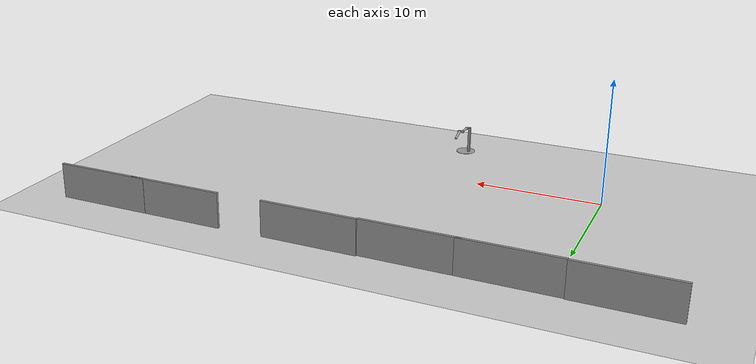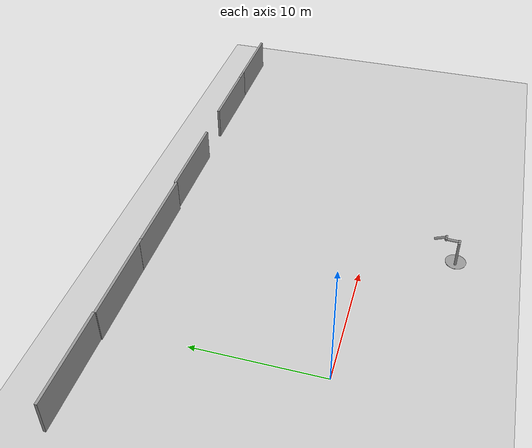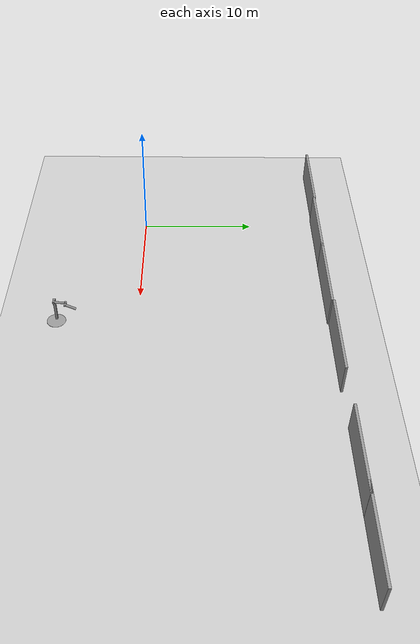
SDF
<sdf version="1.6">
 <world name="default">
  <light name="sun" type="directional">
   <pose>0 0 10 0 -0 0</pose>
   <diffuse>0.8 0.8 0.8 1</diffuse>
   <specular>0.2 0.2 0.2 1</specular>
   <attenuation>
    <range>1000</range>
    <constant>0.9</constant>
    <linear>0.01</linear>
    <quadratic>0.001</quadratic>
   </attenuation>
   <direction>-0.5 0.1 -0.9</direction>
  </light>
  <model name="ground_plane">
   <static>1</static>
   <link name="link">
    <collision name="collision">
     <geometry><plane><normal>0 0 1</normal><size>100 100</size></plane></geometry>
     <surface>
      <contact><collide_bitmask>65535</collide_bitmask></contact>
      <friction><ode><mu>100</mu><mu2>50</mu2></ode></friction>
     </surface>
    </collision>
    <visual name="visual">
     <cast_shadows>0</cast_shadows>
     <geometry><plane><normal>0 0 1</normal><size>100 100</size></plane></geometry>
     <material>
      <script><uri>file://media/materials/scripts/gazebo.material</uri><name>Gazebo/Grey</name></script>
     </material>
    </visual>
   </link>
  </model>
  <gravity>0 0 -9.8</gravity>
  <magnetic_field>6e-06 2.3e-05 -4.2e-05</magnetic_field>
  <atmosphere type="adiabatic"/>
  <physics name="default_physics" default="0" type="ode">
   <max_step_size>0.001</max_step_size>
   <real_time_factor>1</real_time_factor>
   <real_time_update_rate>1000</real_time_update_rate>
  </physics>
  <scene><ambient>0.4 0.4 0.4 1</ambient><background>0.7 0.7 0.7 1</background><shadows>1</shadows></scene>
  <spherical_coordinates>
   <surface_model>EARTH_WGS84</surface_model>
   <latitude_deg>0</latitude_deg>
   <longitude_deg>0</longitude_deg>
   <elevation>0</elevation>
   <heading_deg>0</heading_deg>
  </spherical_coordinates>
  <model name="double_pendulum_with_base">
   <link name="base">
    <inertial>
     <mass>100</mass>
     <inertia><ixx>1</ixx><ixy>0</ixy><ixz>0</ixz><iyy>1</iyy><iyz>0</iyz><izz>1</izz></inertia>
    </inertial>
    <visual name="vis_plate_on_ground">
     <pose>0 0 0.01 0 -0 0</pose>
     <geometry><cylinder><radius>0.8</radius><length>0.02</length></cylinder></geometry>
     <material>
      <script><uri>file://media/materials/scripts/gazebo.material</uri><name>Gazebo/Grey</name></script>
     </material>
    </visual>
    <visual name="vis_pole">
     <pose>-0.275 0 1.1 0 -0 0</pose>
     <geometry><box><size>0.2 0.2 2.2</size></box></geometry>
     <material>
      <script><uri>file://media/materials/scripts/gazebo.material</uri><name>Gazebo/Grey</name></script>
     </material>
    </visual>
    <collision name="col_plate_on_ground">
     <pose>0 0 0.01 0 -0 0</pose>
     <geometry><cylinder><radius>0.8</radius><length>0.02</length></cylinder></geometry>
    </collision>
    <collision name="col_pole">
     <pose>-0.275 0 1.1 0 -0 0</pose>
     <geometry><box><size>0.2 0.2 2.2</size></box></geometry>
    </collision>
   </link>
   <link name="upper_link">
    <pose>0 0 2.1 -1.5708 0 0</pose>
    <inertial>
     <pose>0 0 0.5 0 -0 0</pose>
     <inertia><ixx>1</ixx><ixy>0</ixy><ixz>0</ixz><iyy>1</iyy><iyz>0</iyz><izz>1</izz></inertia>
     <mass>1</mass>
    </inertial>
    <visual name="vis_upper_joint">
     <pose>-0.05 0 0 3.14159 1.57079 3.14159</pose>
     <geometry><cylinder><radius>0.1</radius><length>0.3</length></cylinder></geometry>
     <material>
      <script><uri>file://media/materials/scripts/gazebo.material</uri><name>Gazebo/Grey</name></script>
     </material>
    </visual>
    <visual name="vis_lower_joint">
     <pose>0 0 1 3.14159 1.57079 3.14159</pose>
     <geometry><cylinder><radius>0.1</radius><length>0.2</length></cylinder></geometry>
     <material>
      <script><uri>file://media/materials/scripts/gazebo.material</uri><name>Gazebo/Grey</name></script>
     </material>
    </visual>
    <visual name="vis_cylinder">
     <pose>0 0 0.5 0 -0 0</pose>
     <geometry><cylinder><radius>0.1</radius><length>0.9</length></cylinder></geometry>
     <material>
      <script><uri>file://media/materials/scripts/gazebo.material</uri><name>Gazebo/Grey</name></script>
     </material>
    </visual>
    <collision name="col_upper_joint">
     <pose>-0.05 0 0 3.14159 1.57079 3.14159</pose>
     <geometry><cylinder><radius>0.1</radius><length>0.3</length></cylinder></geometry>
    </collision>
    <collision name="col_lower_joint">
     <pose>0 0 1 3.14159 1.57079 3.14159</pose>
     <geometry><cylinder><radius>0.1</radius><length>0.2</length></cylinder></geometry>
    </collision>
    <collision name="col_cylinder">
     <pose>0 0 0.5 0 -0 0</pose>
     <geometry><cylinder><radius>0.1</radius><length>0.9</length></cylinder></geometry>
    </collision>
   </link>
   <link name="lower_link">
    <pose>0.25 1 2.1 -2 0 0</pose>
    <inertial>
     <pose>0 0 0.5 0 -0 0</pose>
     <inertia><ixx>1</ixx><ixy>0</ixy><ixz>0</ixz><iyy>1</iyy><iyz>0</iyz><izz>1</izz></inertia>
     <mass>1</mass>
    </inertial>
    <visual name="vis_lower_joint">
     <pose>0 0 0 3.14159 1.57079 3.14159</pose>
     <geometry><cylinder><radius>0.08</radius><length>0.3</length></cylinder></geometry>
     <material>
      <script><uri>file://media/materials/scripts/gazebo.material</uri><name>Gazebo/Grey</name></script>
     </material>
    </visual>
    <visual name="vis_cylinder">
     <pose>0 0 0.5 0 -0 0</pose>
     <geometry><cylinder><radius>0.1</radius><length>0.9</length></cylinder></geometry>
     <material>
      <script><uri>file://media/materials/scripts/gazebo.material</uri><name>Gazebo/Grey</name></script>
     </material>
    </visual>
    <collision name="col_lower_joint">
     <pose>0 0 0 3.14159 1.57079 3.14159</pose>
     <geometry><cylinder><radius>0.08</radius><length>0.3</length></cylinder></geometry>
    </collision>
    <collision name="col_cylinder">
     <pose>0 0 0.5 0 -0 0</pose>
     <geometry><cylinder><radius>0.1</radius><length>0.9</length></cylinder></geometry>
    </collision>
   </link>
   <joint name="upper_joint" type="revolute">
    <parent>base</parent>
    <child>upper_link</child>
    <axis>
     <xyz>1 0 0</xyz>
     <use_parent_model_frame>0</use_parent_model_frame>
     <limit><lower>-1e+16</lower><upper>1e+16</upper></limit>
     <dynamics><spring_reference>0</spring_reference><spring_stiffness>0</spring_stiffness></dynamics>
    </axis>
   </joint>
   <joint name="lower_joint" type="revolute">
    <parent>upper_link</parent>
    <child>lower_link</child>
    <axis>
     <xyz>1 0 0</xyz>
     <use_parent_model_frame>0</use_parent_model_frame>
     <limit><lower>-1e+16</lower><upper>1e+16</upper></limit>
     <dynamics><spring_reference>0</spring_reference><spring_stiffness>0</spring_stiffness></dynamics>
    </axis>
   </joint>
   <pose>13.3022 -6.89612 -9e-06 -1e-06 -4e-06 -0.044341</pose>
  </model>
  <model name="grey_wall">
   <static>1</static>
   <link name="link">
    <pose>0 0 1.4 0 -0 0</pose>
    <collision name="collision"><geometry><box><size>7.5 0.2 2.8</size></box></geometry></collision>
    <visual name="visual">
     <cast_shadows>0</cast_shadows>
     <geometry><box><size>7.5 0.2 2.8</size></box></geometry>
     <material>
      <script>
       <uri>model://grey_wall/materials/scripts</uri>
       <uri>model://grey_wall/materials/textures</uri>
       <name>vrc/grey_wall</name>
      </script>
     </material>
    </visual>
   </link>
   <pose>-4.78822 16.0846 0 0 -0 0</pose>
  </model>
  <model name="grey_wall_0">
   <static>1</static>
   <link name="link">
    <pose>0 0 1.4 0 -0 0</pose>
    <collision name="collision"><geometry><box><size>7.5 0.2 2.8</size></box></geometry></collision>
    <visual name="visual">
     <cast_shadows>0</cast_shadows>
     <geometry><box><size>7.5 0.2 2.8</size></box></geometry>
     <material>
      <script>
       <uri>model://grey_wall/materials/scripts</uri>
       <uri>model://grey_wall/materials/textures</uri>
       <name>vrc/grey_wall</name>
      </script>
     </material>
    </visual>
   </link>
   <pose>2.71163 16.0085 0 0 -0 0</pose>
  </model>
  <model name="grey_wall_1">
   <static>1</static>
   <link name="link">
    <pose>0 0 1.4 0 -0 0</pose>
    <collision name="collision"><geometry><box><size>7.5 0.2 2.8</size></box></geometry></collision>
    <visual name="visual">
     <cast_shadows>0</cast_shadows>
     <geometry><box><size>7.5 0.2 2.8</size></box></geometry>
     <material>
      <script>
       <uri>model://grey_wall/materials/scripts</uri>
       <uri>model://grey_wall/materials/textures</uri>
       <name>vrc/grey_wall</name>
      </script>
     </material>
    </visual>
   </link>
   <pose>9.71782 16.0037 0 0 -0 0</pose>
  </model>
  <model name="grey_wall_2">
   <static>1</static>
   <link name="link">
    <pose>0 0 1.4 0 -0 0</pose>
    <collision name="collision"><geometry><box><size>7.5 0.2 2.8</size></box></geometry></collision>
    <visual name="visual">
     <cast_shadows>0</cast_shadows>
     <geometry><box><size>7.5 0.2 2.8</size></box></geometry>
     <material>
      <script>
       <uri>model://grey_wall/materials/scripts</uri>
       <uri>model://grey_wall/materials/textures</uri>
       <name>vrc/grey_wall</name>
      </script>
     </material>
    </visual>
   </link>
   <pose>17.2184 16.1219 0 0 -0 0</pose>
  </model>
  <model name="grey_wall_3">
   <static>1</static>
   <link name="link">
    <pose>0 0 1.4 0 -0 0</pose>
    <collision name="collision"><geometry><box><size>7.5 0.2 2.8</size></box></geometry></collision>
    <visual name="visual">
     <cast_shadows>0</cast_shadows>
     <geometry><box><size>7.5 0.2 2.8</size></box></geometry>
     <material>
      <script>
       <uri>model://grey_wall/materials/scripts</uri>
       <uri>model://grey_wall/materials/textures</uri>
       <name>vrc/grey_wall</name>
      </script>
     </material>
    </visual>
   </link>
   <pose>28.1918 16.2513 0 0 -0 0</pose>
  </model>
  <model name="grey_wall_4">
   <static>1</static>
   <link name="link">
    <pose>0 0 1.4 0 -0 0</pose>
    <collision name="collision"><geometry><box><size>7.5 0.2 2.8</size></box></geometry></collision>
    <visual name="visual">
     <cast_shadows>0</cast_shadows>
     <geometry><box><size>7.5 0.2 2.8</size></box></geometry>
     <material>
      <script>
       <uri>model://grey_wall/materials/scripts</uri>
       <uri>model://grey_wall/materials/textures</uri>
       <name>vrc/grey_wall</name>
      </script>
     </material>
    </visual>
   </link>
   <pose>34.6188 16.2572 0 0 -0 0</pose>
  </model>
 </world>
</sdf>
